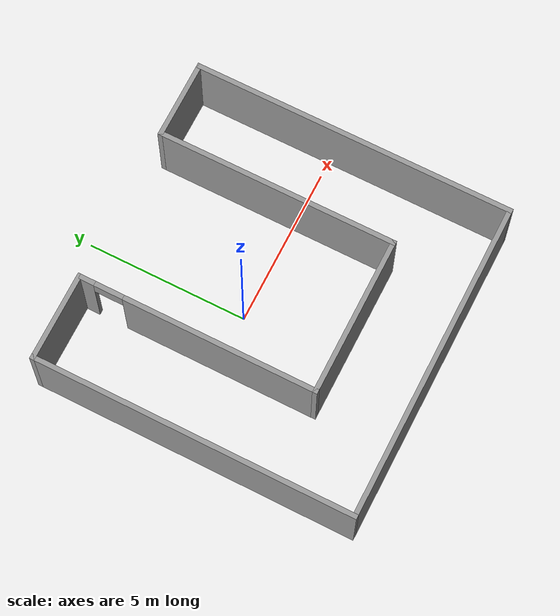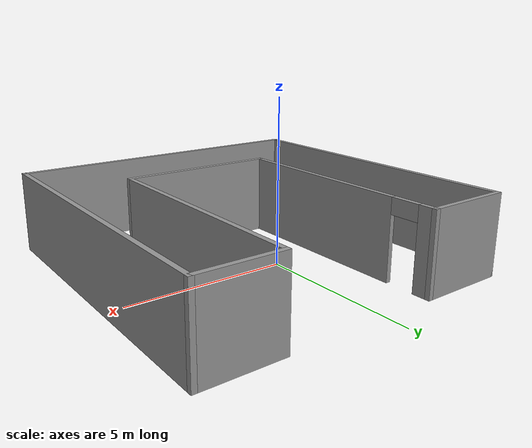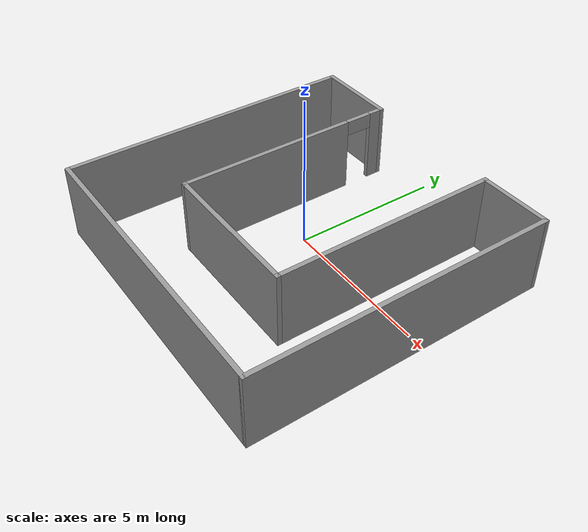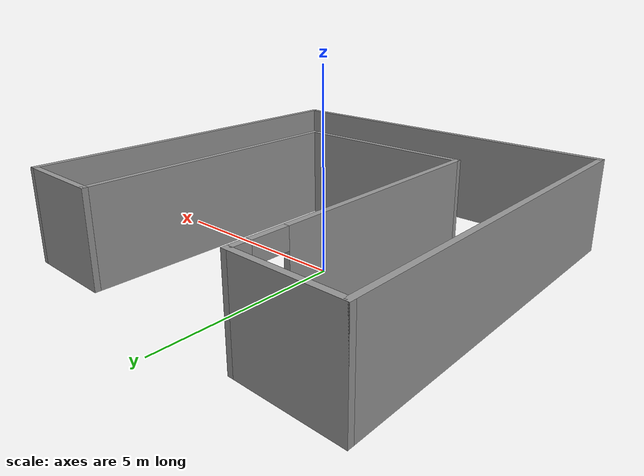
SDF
<?xml version='1.0'?>
<sdf version='1.7'>
  <model name='mybuilding'>
    <pose>0.601074 -0.675951 0 0 -0 0</pose>
    <link name='Wall_16'>
      <collision name='Wall_16_Collision'>
        <geometry>
          <box>
            <size>10 0.15 2.5</size>
          </box>
        </geometry>
        <pose>0 0 1.25 0 -0 0</pose>
      </collision>
      <visual name='Wall_16_Visual'>
        <pose>0 0 1.25 0 -0 0</pose>
        <geometry>
          <box>
            <size>10 0.15 2.5</size>
          </box>
        </geometry>
        <material>
          <script>
            <uri>file://media/materials/scripts/gazebo.material</uri>
            <name>Gazebo/Grey</name>
          </script>
          <ambient>1 1 1 1</ambient>
        </material>
        <meta>
          <layer>0</layer>
        </meta>
      </visual>
      <pose>-4.925 0 0 0 -0 -1.5708</pose>
    </link>
    <link name='Wall_17'>
      <collision name='Wall_17_Collision'>
        <geometry>
          <box>
            <size>10 0.15 2.5</size>
          </box>
        </geometry>
        <pose>0 0 1.25 0 -0 0</pose>
      </collision>
      <visual name='Wall_17_Visual'>
        <pose>0 0 1.25 0 -0 0</pose>
        <geometry>
          <box>
            <size>10 0.15 2.5</size>
          </box>
        </geometry>
        <material>
          <script>
            <uri>file://media/materials/scripts/gazebo.material</uri>
            <name>Gazebo/Grey</name>
          </script>
          <ambient>1 1 1 1</ambient>
        </material>
        <meta>
          <layer>0</layer>
        </meta>
      </visual>
      <pose>-0 -4.925 0 0 -0 0</pose>
    </link>
    <link name='Wall_18'>
      <collision name='Wall_18_Collision'>
        <geometry>
          <box>
            <size>10 0.15 2.5</size>
          </box>
        </geometry>
        <pose>0 0 1.25 0 -0 0</pose>
      </collision>
      <visual name='Wall_18_Visual'>
        <pose>0 0 1.25 0 -0 0</pose>
        <geometry>
          <box>
            <size>10 0.15 2.5</size>
          </box>
        </geometry>
        <material>
          <script>
            <uri>file://media/materials/scripts/gazebo.material</uri>
            <name>Gazebo/Grey</name>
          </script>
          <ambient>1 1 1 1</ambient>
        </material>
        <meta>
          <layer>0</layer>
        </meta>
      </visual>
      <pose>4.925 0 0 0 -0 1.5708</pose>
    </link>
    <link name='Wall_19'>
      <collision name='Wall_19_Collision'>
        <geometry>
          <box>
            <size>2.5 0.15 2.5</size>
          </box>
        </geometry>
        <pose>0 0 1.25 0 -0 0</pose>
      </collision>
      <visual name='Wall_19_Visual'>
        <pose>0 0 1.25 0 -0 0</pose>
        <geometry>
          <box>
            <size>2.5 0.15 2.5</size>
          </box>
        </geometry>
        <material>
          <script>
            <uri>file://media/materials/scripts/gazebo.material</uri>
            <name>Gazebo/Grey</name>
          </script>
          <ambient>1 1 1 1</ambient>
        </material>
        <meta>
          <layer>0</layer>
        </meta>
      </visual>
      <pose>3.75 4.925 0 0 -0 3.14159</pose>
    </link>
    <link name='Wall_20'>
      <collision name='Wall_20_Collision'>
        <geometry>
          <box>
            <size>7.5 0.15 2.5</size>
          </box>
        </geometry>
        <pose>0 0 1.25 0 -0 0</pose>
      </collision>
      <visual name='Wall_20_Visual'>
        <pose>0 0 1.25 0 -0 0</pose>
        <geometry>
          <box>
            <size>7.5 0.15 2.5</size>
          </box>
        </geometry>
        <material>
          <script>
            <uri>file://media/materials/scripts/gazebo.material</uri>
            <name>Gazebo/Grey</name>
          </script>
          <ambient>1 1 1 1</ambient>
        </material>
        <meta>
          <layer>0</layer>
        </meta>
      </visual>
      <pose>2.575 1.25 0 0 -0 -1.5708</pose>
    </link>
    <link name='Wall_21'>
      <collision name='Wall_21_Collision'>
        <geometry>
          <box>
            <size>5 0.15 2.5</size>
          </box>
        </geometry>
        <pose>0 0 1.25 0 -0 0</pose>
      </collision>
      <visual name='Wall_21_Visual'>
        <pose>0 0 1.25 0 -0 0</pose>
        <geometry>
          <box>
            <size>5 0.15 2.5</size>
          </box>
        </geometry>
        <material>
          <script>
            <uri>file://media/materials/scripts/gazebo.material</uri>
            <name>Gazebo/Grey</name>
          </script>
          <ambient>1 1 1 1</ambient>
        </material>
        <meta>
          <layer>0</layer>
        </meta>
      </visual>
      <pose>0.15 -2.425 0 0 -0 3.14159</pose>
    </link>
    <link name='Wall_22'>
      <pose>-2.275 1.25 0 0 -0 1.5708</pose>
      <visual name='Wall_22_Visual_0'>
        <pose>-0.730723 0 1.25 0 -0 0</pose>
        <geometry>
          <box>
            <size>6.03855 0.15 2.5</size>
          </box>
        </geometry>
        <material>
          <script>
            <uri>file://media/materials/scripts/gazebo.material</uri>
            <name>Gazebo/Grey</name>
          </script>
          <ambient>1 1 1 1</ambient>
        </material>
        <meta>
          <layer>0</layer>
        </meta>
      </visual>
      <collision name='Wall_22_Collision_0'>
        <geometry>
          <box>
            <size>6.03855 0.15 2.5</size>
          </box>
        </geometry>
        <pose>-0.730723 0 1.25 0 -0 0</pose>
      </collision>
      <visual name='Wall_22_Visual_1'>
        <pose>3.46928 0 1.25 0 -0 0</pose>
        <geometry>
          <box>
            <size>0.561447 0.15 2.5</size>
          </box>
        </geometry>
        <material>
          <script>
            <uri>file://media/materials/scripts/gazebo.material</uri>
            <name>Gazebo/Grey</name>
          </script>
          <ambient>1 1 1 1</ambient>
        </material>
        <meta>
          <layer>0</layer>
        </meta>
      </visual>
      <collision name='Wall_22_Collision_1'>
        <geometry>
          <box>
            <size>0.561447 0.15 2.5</size>
          </box>
        </geometry>
        <pose>3.46928 0 1.25 0 -0 0</pose>
      </collision>
      <visual name='Wall_22_Visual_2'>
        <pose>2.73855 0 2.25 0 -0 0</pose>
        <geometry>
          <box>
            <size>0.9 0.15 0.5</size>
          </box>
        </geometry>
        <material>
          <script>
            <uri>file://media/materials/scripts/gazebo.material</uri>
            <name>Gazebo/Grey</name>
          </script>
          <ambient>1 1 1 1</ambient>
        </material>
        <meta>
          <layer>0</layer>
        </meta>
      </visual>
      <collision name='Wall_22_Collision_2'>
        <geometry>
          <box>
            <size>0.9 0.15 0.5</size>
          </box>
        </geometry>
        <pose>2.73855 0 2.25 0 -0 0</pose>
      </collision>
    </link>
    <link name='Wall_25'>
      <collision name='Wall_25_Collision'>
        <geometry>
          <box>
            <size>2.8 0.15 2.5</size>
          </box>
        </geometry>
        <pose>0 0 1.25 0 -0 0</pose>
      </collision>
      <visual name='Wall_25_Visual'>
        <pose>0 0 1.25 0 -0 0</pose>
        <geometry>
          <box>
            <size>2.8 0.15 2.5</size>
          </box>
        </geometry>
        <material>
          <script>
            <uri>file://media/materials/scripts/gazebo.material</uri>
            <name>Gazebo/Grey</name>
          </script>
          <ambient>1 1 1 1</ambient>
        </material>
        <meta>
          <layer>0</layer>
        </meta>
      </visual>
      <pose>-3.6 4.925 0 0 -0 0</pose>
    </link>
    <static>1</static>
  </model>
</sdf>
